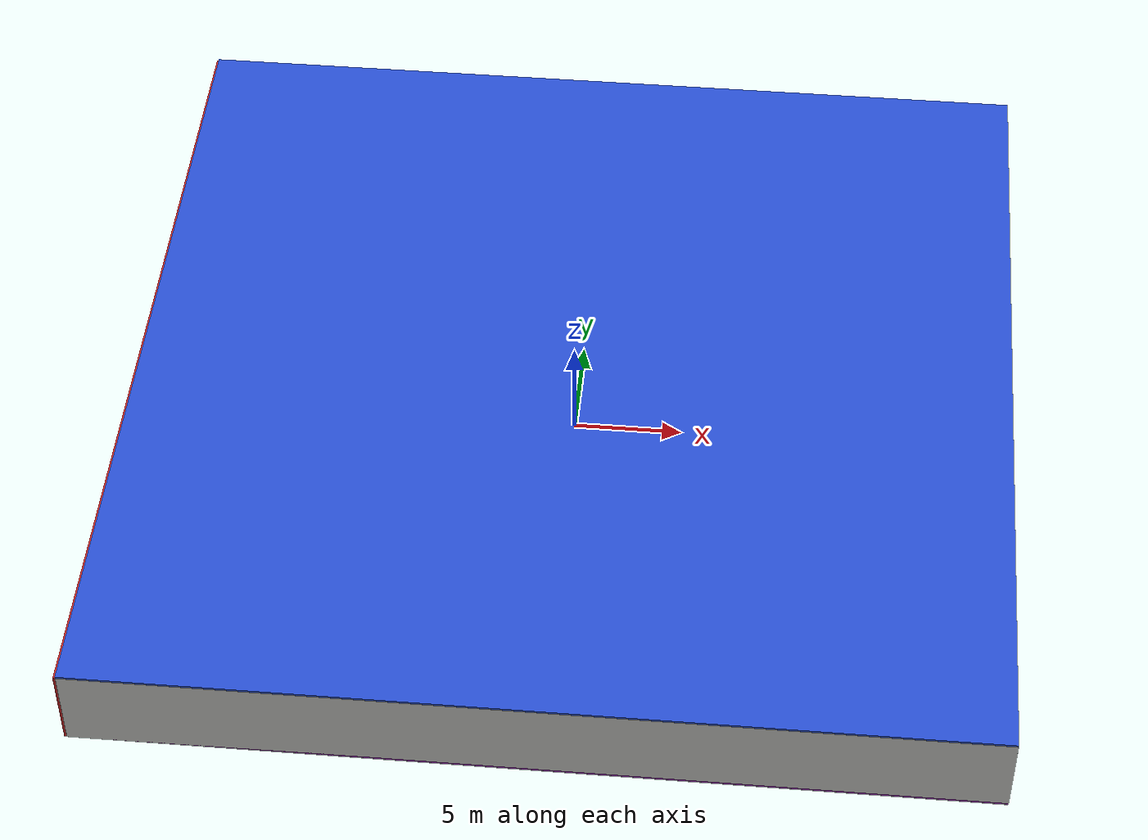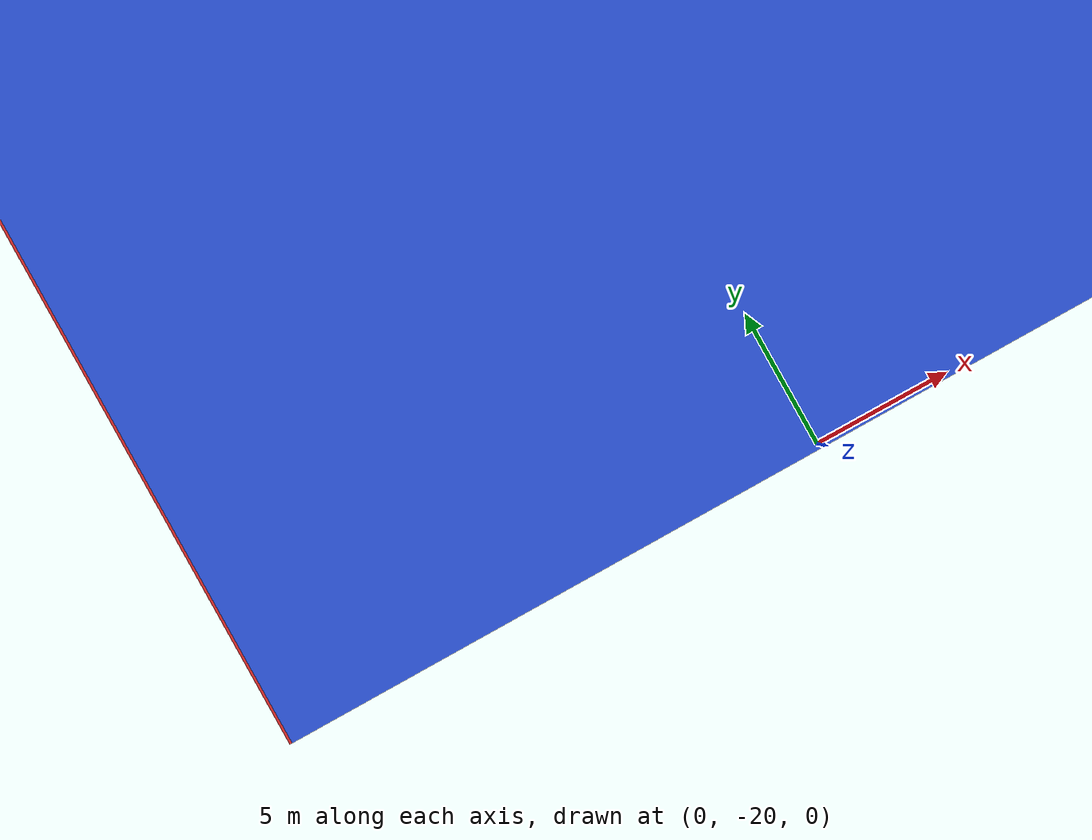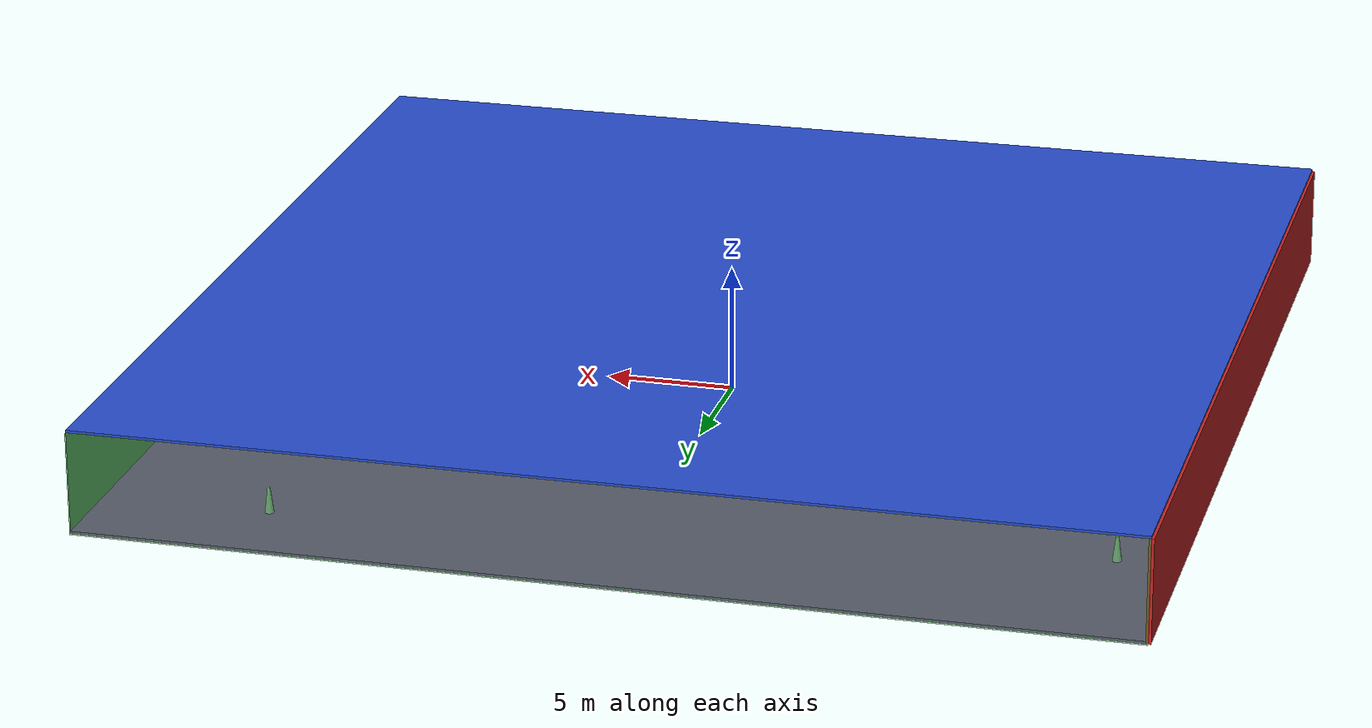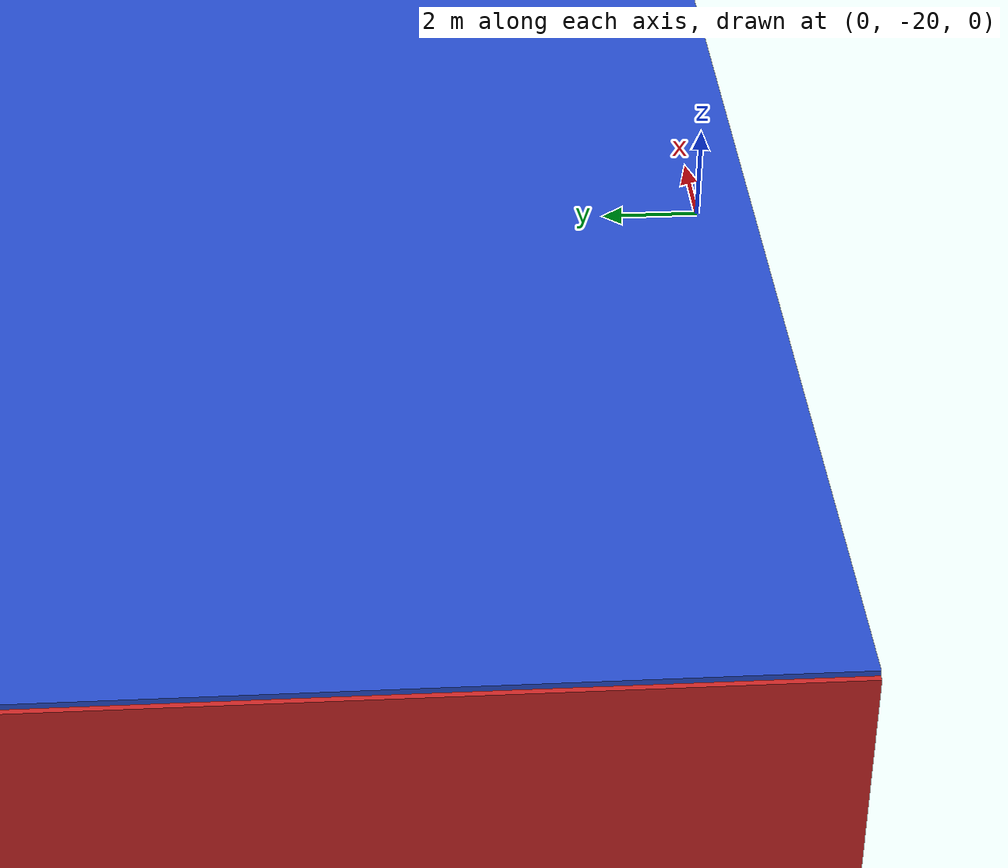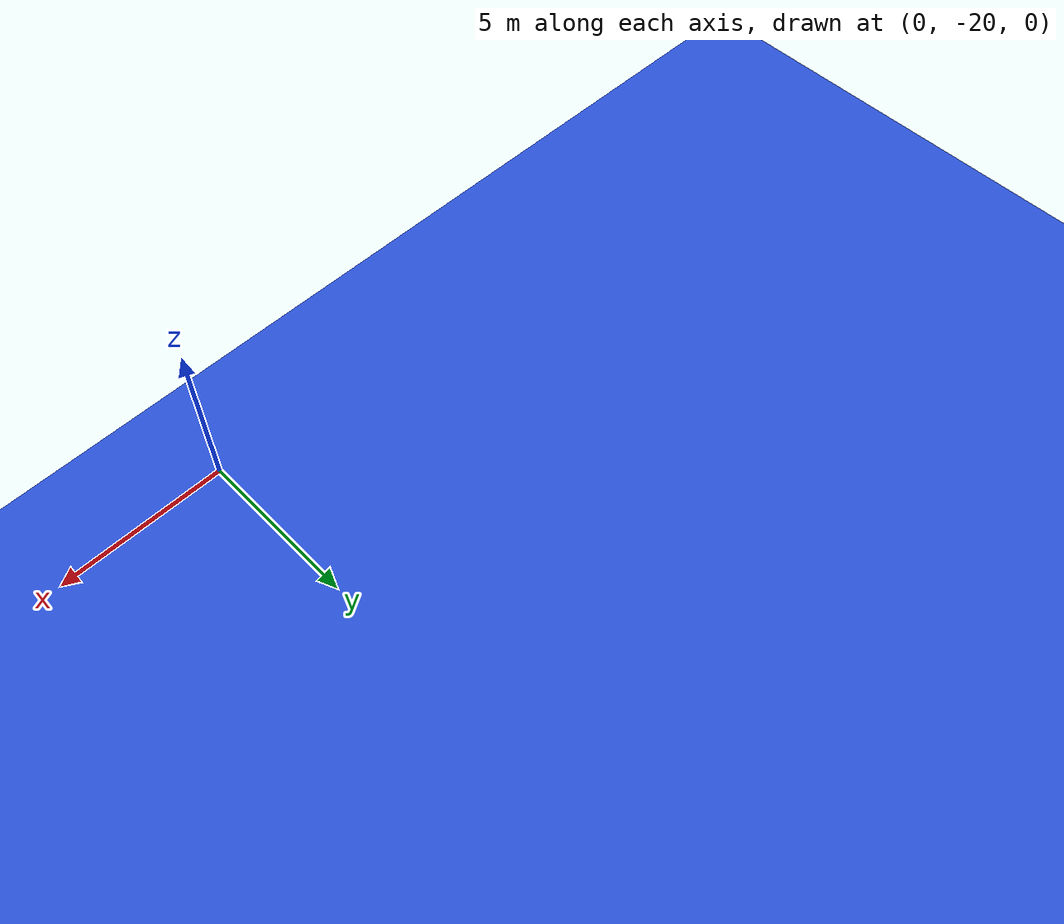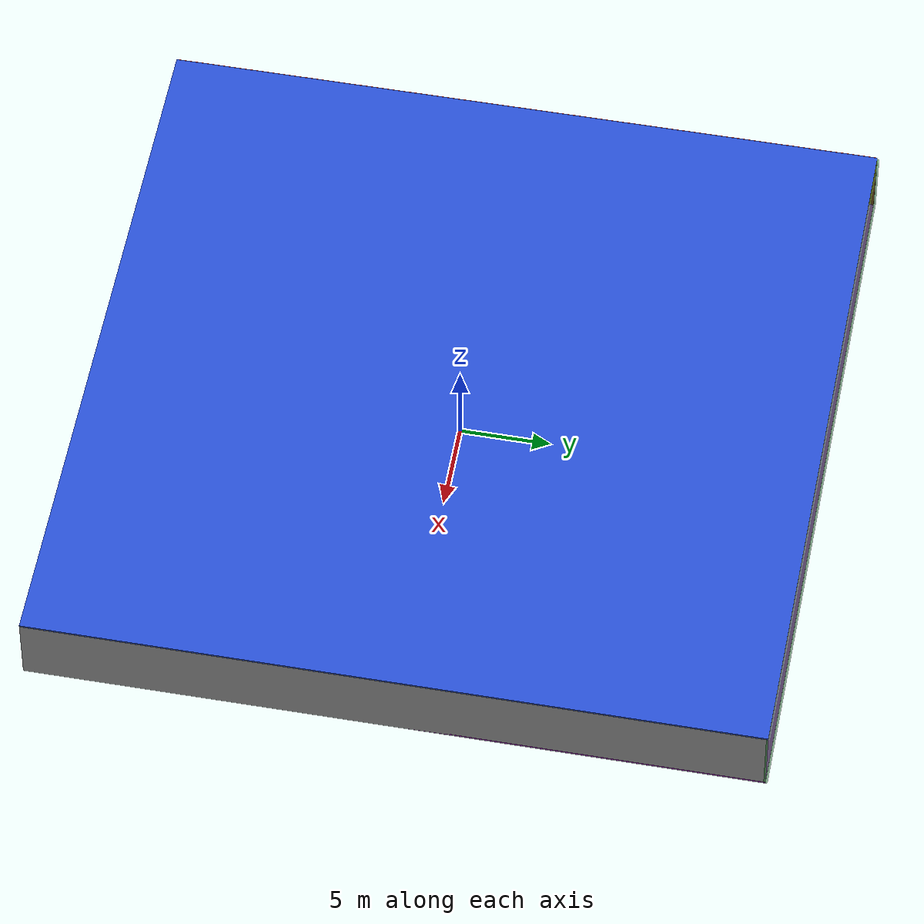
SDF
<sdf version="1.4">
 <world name="default">
  <physics type="ode">
   <max_step_size>0.001</max_step_size>
   <real_time_factor>1</real_time_factor>
   <real_time_update_rate>1000</real_time_update_rate>
   <gravity>0 0 -9.8</gravity>
  </physics>
  <scene><ambient>0.4 0.4 0.4 1</ambient><background>0.7 0.7 0.7 1</background><shadows>1</shadows></scene>
  <model name="Surrounding">
   <static>1</static>
   <link name="Ceiling">
    <collision name="Ceiling_Collision"><geometry><box><size>40 40 0.1</size></box></geometry></collision>
    <visual name="Ceiling_Visual">
     <geometry><box><size>40 40 0.1</size></box></geometry>
     <material>
      <script><uri>file://media/materials/scripts/gazebo.material</uri><name>Gazebo/BlueGlow</name></script>
     </material>
    </visual>
    <pose>0 0 4.05 0 0 0</pose>
   </link>
   <link name="Wall_South">
    <collision name="Wall_South_Collision">
     <geometry><box><size>40 0 4</size></box></geometry>
     <pose>0 0 2 0 -0 0</pose>
    </collision>
    <visual name="Wall_South_Visual">
     <pose>0 0 2 0 -0 0</pose>
     <geometry><box><size>40 0 4</size></box></geometry>
     <material>
      <script><uri>file://media/materials/scripts/gazebo.material</uri><name>Gazebo/CeilingTiled</name></script>
     </material>
    </visual>
    <velocity_decay><linear>0</linear><angular>0</angular></velocity_decay>
    <pose>0 -20 0 0 -0 0</pose>
   </link>
   <link name="Wall_East">
    <collision name="Wall_21_Collision">
     <geometry><box><size>40 0 4</size></box></geometry>
     <pose>0 0 2 0 -0 0</pose>
    </collision>
    <visual name="Wall_21_Visual">
     <pose>0 0 2 0 -0 0</pose>
     <geometry><box><size>40 0 4</size></box></geometry>
     <material>
      <script><uri>file://media/materials/scripts/gazebo.material</uri><name>Gazebo/GreyGradientSky</name></script>
     </material>
    </visual>
    <velocity_decay><linear>0</linear><angular>0</angular></velocity_decay>
    <pose>20 0 0 0 -0 1.5708</pose>
   </link>
   <link name="Wall_North">
    <collision name="Wall_22_Collision">
     <geometry><box><size>40 0.2 4</size></box></geometry>
     <pose>0 0 2 0 -0 0</pose>
    </collision>
    <visual name="Wall_22_Visual">
     <pose>0 0 2 0 -0 0</pose>
     <geometry><box><size>40 0.2 4</size></box></geometry>
     <material>
      <script><uri>file://media/materials/scripts/gazebo.material</uri><name>Gazebo/GreenTransparent</name></script>
     </material>
    </visual>
    <velocity_decay><linear>0</linear><angular>0</angular></velocity_decay>
    <pose>0 20 0 0 -0 0</pose>
   </link>
   <link name="Wall_West">
    <collision name="Wall_23_Collision">
     <geometry><box><size>40 0.2 4</size></box></geometry>
     <pose>0 0 2 0 -0 0</pose>
    </collision>
    <visual name="Wall_23_Visual">
     <pose>0 0 2 0 -0 0</pose>
     <geometry><box><size>40 0.2 4</size></box></geometry>
     <material>
      <script><uri>file://media/materials/scripts/gazebo.material</uri><name>Gazebo/Red</name></script>
     </material>
    </visual>
    <velocity_decay><linear>0</linear><angular>0</angular></velocity_decay>
    <pose>-20 0 0 0 0 -1.5708</pose>
   </link>
   <link name="Ground_link">
    <collision name="collision">
     <pose>0 0 .05 0 -0 0</pose>
     <geometry><box><size>40 40 0.1</size></box></geometry>
    </collision>
    <visual name="visual">
     <pose>0 0 .05 0 -0 0</pose>
     <geometry><box><size>40 40 0.1</size></box></geometry>
     <material>
      <script><uri>file://media/materials/scripts/gazebo.material</uri><name>Gazebo/Purple</name></script>
     </material>
    </visual>
   </link>
   <static>1</static>
  </model>
  <spherical_coordinates>
   <surface_model>EARTH_WGS84</surface_model>
   <latitude_deg>0</latitude_deg>
   <longitude_deg>0</longitude_deg>
   <elevation>0</elevation>
   <heading_deg>0</heading_deg>
  </spherical_coordinates>
  <light name="lightball_0" type="diffuse">
   <diffuse>0.8 0.8 0.8 1</diffuse>
   <specular>0.2 0.2 0.2 1</specular>
   <attenuation>
    <range>100</range>
    <constant>0.7</constant>
    <linear>0.01</linear>
    <quadratic>0.001</quadratic>
   </attenuation>
   <direction>-0.5 0.1 -0.9</direction>
   <pose>14.2089133937 -11.9689031115 1.70798707337 0 0 0</pose>
  </light>
  <light name="lightball_1" type="diffuse">
   <diffuse>0.8 0.8 0.8 1</diffuse>
   <specular>0.2 0.2 0.2 1</specular>
   <attenuation>
    <range>100</range>
    <constant>0.7</constant>
    <linear>0.01</linear>
    <quadratic>0.001</quadratic>
   </attenuation>
   <direction>-0.5 0.1 -0.9</direction>
   <pose>1.14234983694 5.95084330488 0.872768781722 0 0 0</pose>
  </light>
  <include>
   <uri>model://robocup_3Dsim_goal</uri>
   <pose>-17.7522861426 -17.5331942911 0 0 0 3.06384229373</pose>
  </include>
  <include><uri>model://table</uri><pose>-17.7012464931 -10.3962171111 0 0 0 0.350909809344</pose></include>
  <include>
   <uri>model://textured_shapes</uri>
   <pose>-17.4324813302 7.41570764321 0 0 0 0.205632408447</pose>
  </include>
  <include>
   <uri>model://construction_cone</uri>
   <pose>-17.6995237186 13.300353584 0 0 0 0.374915242135</pose>
  </include>
  <include>
   <uri>model://robocup_3Dsim_goal</uri>
   <pose>-15.4482121208 -9.39291640424 0 0 0 2.22389308947</pose>
  </include>
  <include><uri>model://cabinet</uri><pose>-15.612962689 -3.59237660785 0 0 0 1.18814348903</pose></include>
  <include>
   <uri>model://robocup_3Dsim_goal</uri>
   <pose>-13.5780177703 3.55731847302 0 0 0 2.99846493752</pose>
  </include>
  <include><uri>model://cabinet</uri><pose>-11.3236202363 -7.98904411238 0 0 0 3.06897834639</pose></include>
  <include>
   <uri>model://textured_shapes</uri>
   <pose>-10.9733069565 2.38657831324 0 0 0 2.75028358546</pose>
  </include>
  <include>
   <uri>model://robocup_3Dsim_goal</uri>
   <pose>-8.61289976168 -17.9458509623 0 0 0 0.850158250758</pose>
  </include>
  <include>
   <uri>model://robocup_3Dsim_goal</uri>
   <pose>-3.00827516296 -11.8675773005 0 0 0 2.72345161549</pose>
  </include>
  <include>
   <uri>model://textured_shapes</uri>
   <pose>1.49968142584 -14.5285138201 0 0 0 1.79574965585</pose>
  </include>
  <include>
   <uri>model://construction_cone</uri>
   <pose>1.10573921265 -0.22203702564 0 0 0 1.90905929737</pose>
  </include>
  <include>
   <uri>model://construction_cone</uri>
   <pose>1.47068277812 3.33977652533 0 0 0 1.63370301658</pose>
  </include>
  <include>
   <uri>model://robocup_3Dsim_goal</uri>
   <pose>7.28957964788 1.07942953708 0 0 0 2.60603094142</pose>
  </include>
  <include><uri>model://cabinet</uri><pose>9.70342528037 -10.8920634039 0 0 0 2.45166716312</pose></include>
  <include>
   <uri>model://construction_cone</uri>
   <pose>9.2818770862 -2.8155143981 0 0 0 1.27908810418</pose>
  </include>
  <include><uri>model://table</uri><pose>12.4056978874 -16.7544236661 0 0 0 0.858349649717</pose></include>
  <include>
   <uri>model://robocup_3Dsim_goal</uri>
   <pose>11.949212163 -6.69856894581 0 0 0 1.34279454254</pose>
  </include>
  <include><uri>model://cabinet</uri><pose>11.6342986287 6.50948341887 0 0 0 1.47866230028</pose></include>
  <include>
   <uri>model://construction_cone</uri>
   <pose>13.5031647808 16.5289560007 0 0 0 1.61332447653</pose>
  </include>
  <include>
   <uri>model://construction_cone</uri>
   <pose>17.5645693595 8.69382576368 0 0 0 2.02964759871</pose>
  </include>
 </world>
</sdf>

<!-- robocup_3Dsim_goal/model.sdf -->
<sdf version="1.5">
  <model name="robocup_3d_goal">
    <static>true</static>
    <link name="left_post">
      <pose>0 1.05 0.45 0 0 0</pose>
      <collision name="collision">
        <geometry>
          <cylinder>
            <radius>0.05</radius>
            <length>0.9</length>
          </cylinder>
        </geometry>
      </collision>
      <visual name="visual">
        <geometry>
          <cylinder>
            <radius>0.05</radius>
            <length>0.9</length>
          </cylinder>
        </geometry>
        <material>
          <script>
            <uri>file://media/materials/scripts/gazebo.material</uri>
            <name>Gazebo/ZincYellow</name>
          </script>
        </material>
      </visual>
    </link>
    <link name="left_support_horiz_lower">
      <pose>0.30 1.05 0.01 0 0 0</pose>
      <collision name="collision">
        <geometry>
          <box>
            <size>0.50 0.02 0.02</size>
          </box>
        </geometry>
      </collision>
      <visual name="visual">
        <geometry>
          <box>
            <size>0.50 0.02 0.02</size>
          </box>
        </geometry>
        <material>
          <script>
            <uri>file://media/materials/scripts/gazebo.material</uri>
            <name>Gazebo/White</name>
          </script>
        </material>
      </visual>
    </link>
    <link name="left_support_horiz_upper">
      <pose>0.30 1.05 0.79 0 0 0</pose>
      <collision name="collision">
        <geometry>
          <box>
            <size>0.50 0.02 0.02</size>
          </box>
        </geometry>
      </collision>
      <visual name="visual">
        <geometry>
          <box>
            <size>0.50 0.02 0.02</size>
          </box>
        </geometry>
        <material>
          <script>
            <uri>file://media/materials/scripts/gazebo.material</uri>
            <name>Gazebo/White</name>
          </script>
        </material>
      </visual>
    </link>
    <link name="left_support_vertical">
      <pose>0.56 1.05 0.4 0 1.5708 0</pose>
      <collision name="collision">
        <geometry>
          <box>
            <size>0.80 0.02 0.02</size>
          </box>
        </geometry>
      </collision>
      <visual name="visual">
        <geometry>
          <box>
            <size>0.80 0.02 0.02</size>
          </box>
        </geometry>
        <material>
          <script>
            <uri>file://media/materials/scripts/gazebo.material</uri>
            <name>Gazebo/White</name>
          </script>
        </material>
      </visual>
    </link>
    <link name="right_support_horiz_lower">
      <pose>0.30 -1.05 0.01 0 0 0</pose>
      <collision name="collision">
        <geometry>
          <box>
            <size>0.50 0.02 0.02</size>
          </box>
        </geometry>
      </collision>
      <visual name="visual">
        <geometry>
          <box>
            <size>0.50 0.02 0.02</size>
          </box>
        </geometry>
        <material>
          <script>
            <uri>file://media/materials/scripts/gazebo.material</uri>
            <name>Gazebo/White</name>
          </script>
        </material>
      </visual>
    </link>
    <link name="right_support_horiz_upper">
      <pose>0.30 -1.05 0.79 0 0 0</pose>
      <collision name="collision">
        <geometry>
          <box>
            <size>0.50 0.02 0.02</size>
          </box>
        </geometry>
      </collision>
      <visual name="visual">
        <geometry>
          <box>
            <size>0.50 0.02 0.02</size>
          </box>
        </geometry>
        <material>
          <script>
            <uri>file://media/materials/scripts/gazebo.material</uri>
            <name>Gazebo/White</name>
          </script>
        </material>
      </visual>
    </link>
    <link name="right_support_vertical">
      <pose>0.56 -1.05 0.4 0 1.5708 0</pose>
      <collision name="collision">
        <geometry>
          <box>
            <size>0.80 0.02 0.02</size>
          </box>
        </geometry>
      </collision>
      <visual name="visual">
        <geometry>
          <box>
            <size>0.80 0.02 0.02</size>
          </box>
        </geometry>
        <material>
          <script>
            <uri>file://media/materials/scripts/gazebo.material</uri>
            <name>Gazebo/White</name>
          </script>
        </material>
      </visual>
    </link>
    <link name="center_support_horiz_lower">
      <pose>0.56 0 0.01 0 1.5708 0</pose>
      <collision name="collision">
        <geometry>
          <box>
            <size>0.02 2.08 0.02</size>
          </box>
        </geometry>
      </collision>
      <visual name="visual">
        <geometry>
          <box>
            <size>0.02 2.08 0.02</size>
          </box>
        </geometry>
        <material>
          <script>
            <uri>file://media/materials/scripts/gazebo.material</uri>
            <name>Gazebo/White</name>
          </script>
        </material>
      </visual>
    </link>
    <link name="center_support_horiz_upper">
      <pose>0.56 0 0.79 0 1.5708 0</pose>
      <collision name="collision">
        <geometry>
          <box>
            <size>0.02 2.08 0.02</size>
          </box>
        </geometry>
      </collision>
      <visual name="visual">
        <geometry>
          <box>
            <size>0.02 2.08 0.02</size>
          </box>
        </geometry>
        <material>
          <script>
            <uri>file://media/materials/scripts/gazebo.material</uri>
            <name>Gazebo/White</name>
          </script>
        </material>
      </visual>
    </link>
    <link name="right_post">
      <pose>0 -1.05 0.45 0 0 0</pose>
      <collision name="collision">
        <geometry>
          <cylinder>
            <radius>0.05</radius>
            <length>0.9</length>
          </cylinder>
        </geometry>
      </collision>
      <visual name="visual">
        <geometry>
          <cylinder>
            <radius>0.05</radius>
            <length>0.9</length>
          </cylinder>
        </geometry>
        <material>
          <script>
            <uri>file://media/materials/scripts/gazebo.material</uri>
            <name>Gazebo/ZincYellow</name>
          </script>
        </material>
      </visual>
    </link>
    <link name="crossbar">
      <pose>0 0 0.85 1.57 1.57 0</pose>
      <collision name="collision">
        <geometry>
          <cylinder>
            <radius>0.05</radius>
            <length>2.0</length>
          </cylinder>
        </geometry>
      </collision>
      <visual name="visual">
        <geometry>
          <cylinder>
            <radius>0.05</radius>
            <length>2.0</length>
          </cylinder>
        </geometry>
        <material>
          <script>
            <uri>file://media/materials/scripts/gazebo.material</uri>
            <name>Gazebo/ZincYellow</name>
          </script>
        </material>
      </visual>
    </link>
    <link name="center_net">
      <pose>0.56 0 0.40 0 0 0</pose>
      <collision name="collision">
        <geometry>
          <box>
            <size>0.01 2.1 0.80</size>
          </box>
        </geometry>
      </collision>
      <visual name="visual">
        <geometry>
          <box>
            <size>0.01 2.1 0.80</size>
          </box>
        </geometry>
        <material>
          <script>
            <uri>model://../model_source/models/robocup09_spl_field/materials/scripts/</uri>
            <uri>model://../model_source/models/robocup09_spl_field/materials/textures/</uri>
            <name>RoboCup/Net</name>
          </script>
        </material>
      </visual>
    </link>
    <link name="left_net">
      <pose>0.30 1.05 0.40 0 0 0</pose>
      <collision name="collision">
        <geometry>
          <box>
            <size>0.50 0.01 0.76</size>
          </box>
        </geometry>
      </collision>
      <visual name="visual">
        <geometry>
          <box>
            <size>0.50 0.01 0.76</size>
          </box>
        </geometry>
        <material>
          <script>
            <uri>model://../model_source/models/robocup09_spl_field/materials/scripts/</uri>
            <uri>model://../model_source/models/robocup09_spl_field/materials/textures/</uri>
            <name>RoboCup/Net</name>
          </script>
        </material>
      </visual>
    </link>
    <link name="right_net">
      <pose>0.30 -1.05 0.40 0 0 0</pose>
      <collision name="collision">
        <geometry>
          <box>
            <size>0.50 0.01 0.76</size>
          </box>
        </geometry>
      </collision>
      <visual name="visual">
        <geometry>
          <box>
            <size>0.50 0.01 0.76</size>
          </box>
        </geometry>
        <material>
          <script>
            <uri>model://../model_source/models/robocup09_spl_field/materials/scripts/</uri>
            <uri>model://../model_source/models/robocup09_spl_field/materials/textures/</uri>
            <name>RoboCup/Net</name>
          </script>
        </material>
      </visual>
    </link>
  </model>
</sdf>

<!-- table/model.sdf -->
<sdf version="1.5">
  <model name="table">
    <static>true</static>
    <link name="link">
      <collision name="surface">
        <pose>0 0 1.0 0 0 0</pose>
        <geometry>
          <box>
            <size>1.5 0.8 0.03</size>
          </box>
        </geometry>
        <surface>
          <friction>
            <ode>
              <mu>0.6</mu>
              <mu2>0.6</mu2>
            </ode>
          </friction>
        </surface>
      </collision>
      <visual name="visual1">
        <pose>0 0 1.0 0 0 0</pose>
        <geometry>
          <box>
            <size>1.5 0.8 0.03</size>
          </box>
        </geometry>
        <material>
          <script>
            <uri>model://media/materials/scripts/gazebo.material</uri>
            <name>Gazebo/Wood</name>
          </script>
        </material>
      </visual>
      <collision name="front_left_leg">
        <pose>0.68 0.38 0.5 0 0 0</pose>
        <geometry>
          <cylinder>
            <radius>0.02</radius>
            <length>1.0</length>
          </cylinder>
        </geometry>
      </collision>
      <visual name="front_left_leg">
        <pose>0.68 0.38 0.5 0 0 0</pose>
        <geometry>
          <cylinder>
            <radius>0.02</radius>
            <length>1.0</length>
          </cylinder>
        </geometry>
        <material>
          <script>
            <uri>model://media/materials/scripts/gazebo.material</uri>
            <name>Gazebo/Grey</name>
          </script>
        </material>
      </visual>
      <collision name="front_right_leg">
        <pose>0.68 -0.38 0.5 0 0 0</pose>
        <geometry>
          <cylinder>
            <radius>0.02</radius>
            <length>1.0</length>
          </cylinder>
        </geometry>
      </collision>
      <visual name="front_right_leg">
        <pose>0.68 -0.38 0.5 0 0 0</pose>
        <geometry>
          <cylinder>
            <radius>0.02</radius>
            <length>1.0</length>
          </cylinder>
        </geometry>
        <material>
          <script>
            <uri>model://media/materials/scripts/gazebo.material</uri>
            <name>Gazebo/Grey</name>
          </script>
        </material>
      </visual>
      <collision name="back_right_leg">
        <pose>-0.68 -0.38 0.5 0 0 0</pose>
        <geometry>
          <cylinder>
            <radius>0.02</radius>
            <length>1.0</length>
          </cylinder>
        </geometry>
      </collision>
      <visual name="back_right_leg">
        <pose>-0.68 -0.38 0.5 0 0 0</pose>
        <geometry>
          <cylinder>
            <radius>0.02</radius>
            <length>1.0</length>
          </cylinder>
        </geometry>
        <material>
          <script>
            <uri>model://media/materials/scripts/gazebo.material</uri>
            <name>Gazebo/Grey</name>
          </script>
        </material>
      </visual>
      <collision name="back_left_leg">
        <pose>-0.68 0.38 0.5 0 0 0</pose>
        <geometry>
          <cylinder>
            <radius>0.02</radius>
            <length>1.0</length>
          </cylinder>
        </geometry>
      </collision>
      <visual name="back_left_leg">
        <pose>-0.68 0.38 0.5 0 0 0</pose>
        <geometry>
          <cylinder>
            <radius>0.02</radius>
            <length>1.0</length>
          </cylinder>
        </geometry>
        <material>
          <script>
            <uri>model://media/materials/scripts/gazebo.material</uri>
            <name>Gazebo/Grey</name>
          </script>
        </material>
      </visual>
    </link>
  </model>
</sdf>

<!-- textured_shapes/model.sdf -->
<sdf version="1.6">
  <model name="textured_shapes">
    <pose>0 0 0.5 0 0 0</pose>
    <link name="box">
      <pose>0 -1.5 0 0 0 0</pose>
      <collision name="collision">
        <geometry>
          <box>
            <size>1 1 1</size>
          </box>
        </geometry>
      </collision>
      <visual name="visual">
        <geometry>
          <box>
            <size>1 1 1</size>
          </box>
        </geometry>
        <material>
          <script>
            <uri>model://../model_source/models/textured_shapes/materials/scripts</uri>
            <uri>model://../model_source/models/textured_shapes/materials/textures</uri>
            <name>TexturedShape/Squares</name>
          </script>
        </material>
      </visual>
    </link>
    <link name="sphere">
      <collision name="collision">
        <geometry>
          <sphere>
            <radius>0.5</radius>
          </sphere>
        </geometry>
      </collision>
      <visual name="visual">
        <geometry>
          <sphere>
            <radius>0.5</radius>
          </sphere>
        </geometry>
        <material>
          <script>
            <uri>model://../model_source/models/textured_shapes/materials/scripts</uri>
            <uri>model://../model_source/models/textured_shapes/materials/textures</uri>
            <name>TexturedShape/Squares</name>
          </script>
        </material>
      </visual>
    </link>
    <link name="cylinder">
      <pose>0 1.5 0 0 0 0</pose>
      <collision name="collision">
        <geometry>
          <cylinder>
            <radius>0.5</radius>
            <length>1</length>
          </cylinder>
        </geometry>
      </collision>
      <visual name="visual">
        <geometry>
          <cylinder>
            <radius>0.5</radius>
            <length>1</length>
          </cylinder>
        </geometry>
        <material>
          <script>
            <uri>model://../model_source/models/textured_shapes/materials/scripts</uri>
            <uri>model://../model_source/models/textured_shapes/materials/textures</uri>
            <name>TexturedShape/Squares</name>
          </script>
        </material>
      </visual>
    </link>
  </model>
</sdf>

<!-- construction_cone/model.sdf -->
<sdf version="1.5">
  <model name="Construction Cone">
    <link name="link">
      <collision name="collision">
        <geometry>
          <mesh>
            <scale>10 10 10</scale>
            <uri>file://isr-testbed/construction_cone/meshes/construction_cone.dae</uri>
          </mesh>
        </geometry>
      </collision>
      <visual name="visual">
        <geometry>
          <mesh>
            <scale>10 10 10</scale>
            <uri>file://isr-testbed/construction_cone/meshes/construction_cone.dae</uri>
          </mesh>
        </geometry>
      </visual>
    </link>
  </model>
</sdf>

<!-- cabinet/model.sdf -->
<sdf version="1.5">
  <model name="cabinet">
    <static>true</static>
    <link name="cabinet_bottom_plate">
      <inertial>
        <pose>0 0 -1 0 0 0</pose>
        <inertia>
          <ixx>2.050000</ixx>
          <ixy>0</ixy>
          <ixz>0</ixz>
          <iyy>2.050000</iyy>
          <iyz>0</iyz>
          <izz>2.050000</izz>
        </inertia>
        <mass>25.000000</mass>
      </inertial>
      <collision name="cabinet_bottom_plate_geom">
        <pose>0 0 0.010000 0 0 0</pose>
        <geometry>
          <box>
            <size>0.450000 0.450000 0.020000</size>
          </box>
        </geometry>
      </collision>
      <visual name="cabinet_bottom_plate_geom_visual">
        <pose>0 0 0.010000 0 0 0</pose>
        <geometry>
          <box>
            <size>0.450000 0.450000 0.020000</size>
          </box>
        </geometry>
        <material>
          <script>
            <uri>model://media/materials/scripts/gazebo.material</uri>
            <name>Gazebo/Wood</name>
          </script>
        </material>
      </visual>
      <collision name="cabinet_bottom_plate_geom_cabinet_back_plate">
        <pose>0.235000 0 0.510000 0 0 0</pose>
        <geometry>
          <box>
            <size>0.020000 0.450000 1.020000</size>
          </box>
        </geometry>
      </collision>
      <visual name="cabinet_bottom_plate_geom_cabinet_back_plate_visual">
        <pose>0.235000 0 0.510000 0 0 0</pose>
        <geometry>
          <box>
            <size>0.020000 0.450000 1.020000</size>
          </box>
        </geometry>
        <material>
          <script>
            <uri>model://media/materials/scripts/gazebo.material</uri>
            <name>Gazebo/Wood</name>
          </script>
        </material>
      </visual>
      <collision name="cabinet_bottom_plate_geom_cabinet_left_plate">
        <pose>0 0.235000 0.510000 0 0 0</pose>
        <geometry>
          <box>
            <size>0.450000 0.020000 1.020000</size>
          </box>
        </geometry>
      </collision>
      <visual name="cabinet_bottom_plate_geom_cabinet_left_plate_visual">
        <pose>0 0.235000 0.510000 0 0 0</pose>
        <geometry>
          <box>
            <size>0.450000 0.020000 1.020000</size>
          </box>
        </geometry>
        <material>
          <script>
            <uri>model://media/materials/scripts/gazebo.material</uri>
            <name>Gazebo/Wood</name>
          </script>
        </material>
      </visual>
      <collision name="cabinet_bottom_plate_geom_cabinet_middle_plate">
        <pose>0 0 0.510000 0 0 0</pose>
        <geometry>
          <box>
            <size>0.450000 0.450000 0.020000</size>
          </box>
        </geometry>
      </collision>
      <visual name="cabinet_bottom_plate_geom_cabinet_middle_plate_visual">
        <pose>0 0 0.510000 0 0 0</pose>
        <geometry>
          <box>
            <size>0.450000 0.450000 0.020000</size>
          </box>
        </geometry>
        <material>
          <script>
            <uri>model://media/materials/scripts/gazebo.material</uri>
            <name>Gazebo/Wood</name>
          </script>
        </material>
      </visual>
      <collision name="cabinet_bottom_plate_geom_cabinet_right_plate">
        <pose>0 -0.235000 0.510000 0 0 0</pose>
        <geometry>
          <box>
            <size>0.450000 0.020000 1.020000</size>
          </box>
        </geometry>
      </collision>
      <visual name="cabinet_bottom_plate_geom_cabinet_right_plate_visual">
        <pose>0 -0.235000 0.510000 0 0 0</pose>
        <geometry>
          <box>
            <size>0.450000 0.020000 1.020000</size>
          </box>
        </geometry>
        <material>
          <script>
            <uri>model://media/materials/scripts/gazebo.material</uri>
            <name>Gazebo/Wood</name>
          </script>
        </material>
      </visual>
      <collision name="cabinet_bottom_plate_geom_cabinet_top_plate">
        <pose>0 0 1.010000 0 0 0</pose>
        <geometry>
          <box>
            <size>0.450000 0.450000 0.020000</size>
          </box>
        </geometry>
      </collision>
      <visual name="cabinet_bottom_plate_geom_cabinet_top_plate_visual">
        <pose>0 0 1.010000 0 0 0</pose>
        <geometry>
          <box>
            <size>0.450000 0.450000 0.020000</size>
          </box>
        </geometry>
        <material>
          <script>
            <uri>model://media/materials/scripts/gazebo.material</uri>
            <name>Gazebo/Wood</name>
          </script>
        </material>
      </visual>
    </link>
  </model>
</sdf>
